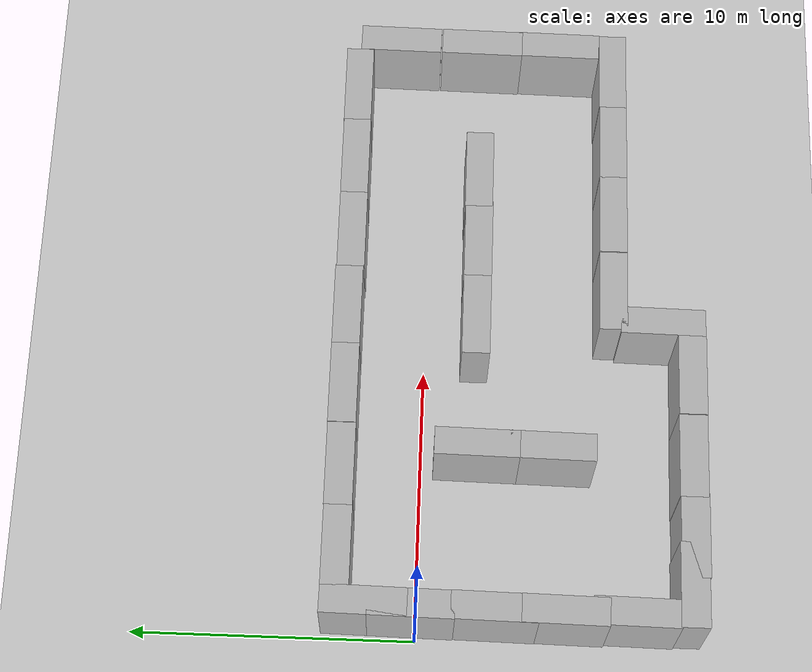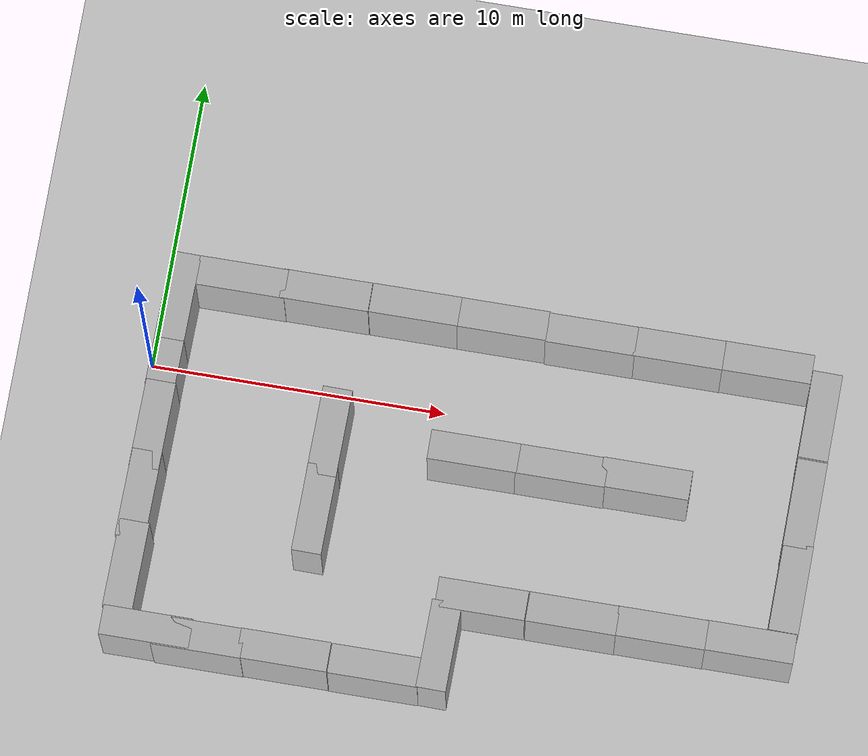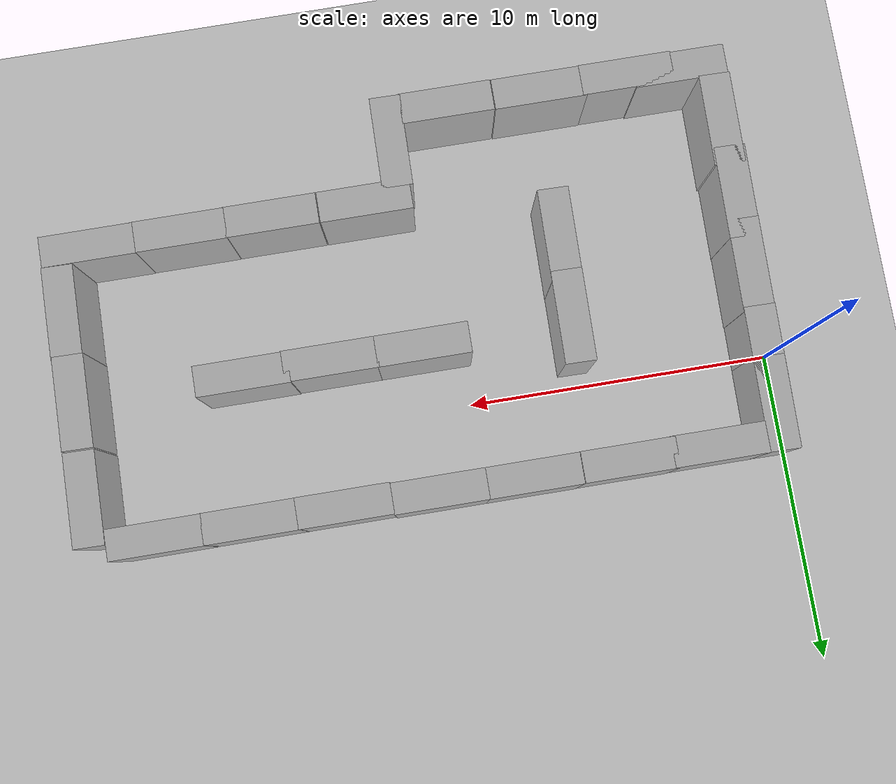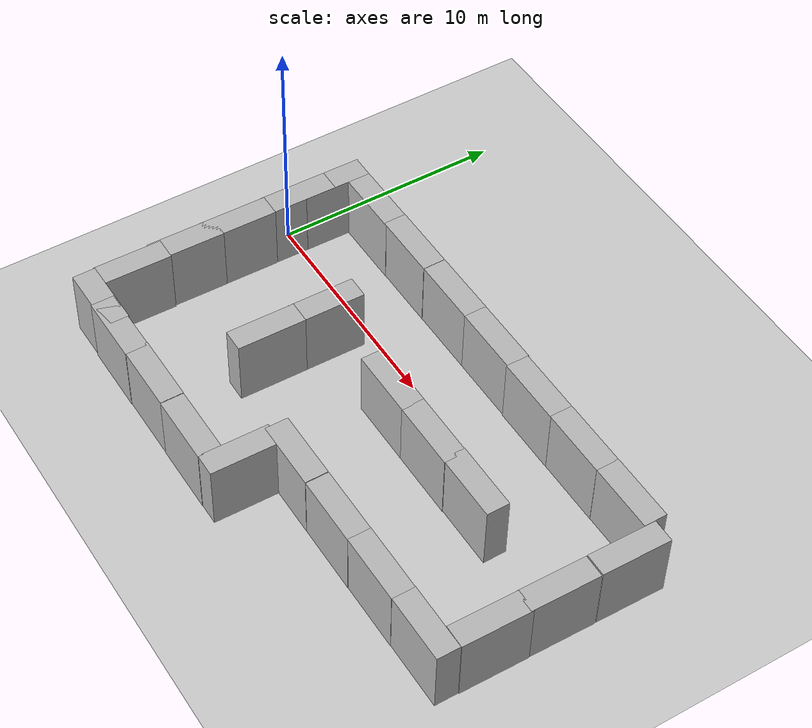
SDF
<sdf version="1.7">
 <world name="default">
  <light name="sun" type="directional">
   <pose>0 0 10 0 -0 0</pose>
   <diffuse>0.8 0.8 0.8 1</diffuse>
   <specular>0.2 0.2 0.2 1</specular>
   <attenuation>
    <range>1000</range>
    <constant>0.9</constant>
    <linear>0.01</linear>
    <quadratic>0.001</quadratic>
   </attenuation>
   <direction>-0.5 0.1 -0.9</direction>
   <spot><inner_angle>0</inner_angle><outer_angle>0</outer_angle><falloff>0</falloff></spot>
  </light>
  <model name="ground_plane">
   <static>1</static>
   <link name="link">
    <collision name="collision">
     <geometry><plane><normal>0 0 1</normal><size>100 100</size></plane></geometry>
     <surface>
      <contact><collide_bitmask>65535</collide_bitmask></contact>
      <friction><ode><mu>100</mu><mu2>50</mu2></ode></friction>
     </surface>
    </collision>
    <visual name="visual">
     <cast_shadows>0</cast_shadows>
     <geometry><plane><normal>0 0 1</normal><size>100 100</size></plane></geometry>
     <material>
      <script><uri>file://media/materials/scripts/gazebo.material</uri><name>Gazebo/Grey</name></script>
     </material>
    </visual>
   </link>
  </model>
  <gravity>0 0 -9.8</gravity>
  <magnetic_field>6e-06 2.3e-05 -4.2e-05</magnetic_field>
  <atmosphere type="adiabatic"/>
  <physics type="ode">
   <max_step_size>0.001</max_step_size>
   <real_time_factor>1</real_time_factor>
   <real_time_update_rate>1000</real_time_update_rate>
  </physics>
  <scene><ambient>0.4 0.4 0.4 1</ambient><background>0.7 0.7 0.7 1</background><shadows>1</shadows></scene>
  <spherical_coordinates>
   <surface_model>EARTH_WGS84</surface_model>
   <latitude_deg>0</latitude_deg>
   <longitude_deg>0</longitude_deg>
   <elevation>0</elevation>
   <heading_deg>0</heading_deg>
  </spherical_coordinates>
  <model name="brick_box_3x1x3">
   <static>1</static>
   <link name="chassis">
    <pose>0 0 1.5 0 -0 0</pose>
    <collision name="collision"><geometry><box><size>3 1 3</size></box></geometry></collision>
    <visual name="visual">
     <geometry><mesh><uri>model://brick_box_3x1x3/meshes/simple_box.dae</uri><scale>3 1 3</scale></mesh></geometry>
     <material>
      <script>
       <uri>model://brick_box_3x1x3/materials/scripts</uri>
       <uri>model://brick_box_3x1x3/materials/textures</uri>
       <name>BrickBox/Diffuse</name>
      </script>
     </material>
    </visual>
   </link>
   <pose>6.24661 -9.49277 0 0 -0 0</pose>
  </model>
  <model name="brick_box_3x1x3_0">
   <static>1</static>
   <link name="chassis">
    <pose>0 0 1.5 0 -0 0</pose>
    <collision name="collision"><geometry><box><size>3 1 3</size></box></geometry></collision>
    <visual name="visual">
     <geometry><mesh><uri>model://brick_box_3x1x3/meshes/simple_box.dae</uri><scale>3 1 3</scale></mesh></geometry>
     <material>
      <script>
       <uri>model://brick_box_3x1x3/materials/scripts</uri>
       <uri>model://brick_box_3x1x3/materials/textures</uri>
       <name>BrickBox/Diffuse</name>
      </script>
     </material>
    </visual>
   </link>
   <pose>9.26993 -9.50546 0 0 -0 0</pose>
  </model>
  <model name="brick_box_3x1x3_1">
   <static>1</static>
   <link name="chassis">
    <pose>0 0 1.5 0 -0 0</pose>
    <collision name="collision"><geometry><box><size>3 1 3</size></box></geometry></collision>
    <visual name="visual">
     <geometry><mesh><uri>model://brick_box_3x1x3/meshes/simple_box.dae</uri><scale>3 1 3</scale></mesh></geometry>
     <material>
      <script>
       <uri>model://brick_box_3x1x3/materials/scripts</uri>
       <uri>model://brick_box_3x1x3/materials/textures</uri>
       <name>BrickBox/Diffuse</name>
      </script>
     </material>
    </visual>
   </link>
   <pose>11.2396 -8.49514 0 0 0 -1.58618</pose>
  </model>
  <model name="brick_box_3x1x3_clone">
   <static>1</static>
   <link name="chassis">
    <pose>0 0 1.5 0 -0 0</pose>
    <collision name="collision"><geometry><box><size>3 1 3</size></box></geometry></collision>
    <visual name="visual">
     <geometry><mesh><uri>model://brick_box_3x1x3/meshes/simple_box.dae</uri><scale>3 1 3</scale></mesh></geometry>
     <material>
      <script>
       <uri>model://brick_box_3x1x3/materials/scripts</uri>
       <uri>model://brick_box_3x1x3/materials/textures</uri>
       <name>BrickBox/Diffuse</name>
      </script>
     </material>
    </visual>
   </link>
   <pose>3.37674 -9.50836 0 0 -0 0</pose>
  </model>
  <model name="brick_box_3x1x3_clone_4">
   <static>1</static>
   <link name="chassis">
    <pose>0 0 1.5 0 -0 0</pose>
    <collision name="collision"><geometry><box><size>3 1 3</size></box></geometry></collision>
    <visual name="visual">
     <geometry><mesh><uri>model://brick_box_3x1x3/meshes/simple_box.dae</uri><scale>3 1 3</scale></mesh></geometry>
     <material>
      <script>
       <uri>model://brick_box_3x1x3/materials/scripts</uri>
       <uri>model://brick_box_3x1x3/materials/textures</uri>
       <name>BrickBox/Diffuse</name>
      </script>
     </material>
    </visual>
   </link>
   <pose>1.64078 -9.46877 0 0 -0 0</pose>
  </model>
  <model name="brick_box_3x1x3_1_clone_1">
   <static>1</static>
   <link name="chassis">
    <pose>0 0 1.5 0 -0 0</pose>
    <collision name="collision"><geometry><box><size>3 1 3</size></box></geometry></collision>
    <visual name="visual">
     <geometry><mesh><uri>model://brick_box_3x1x3/meshes/simple_box.dae</uri><scale>3 1 3</scale></mesh></geometry>
     <material>
      <script>
       <uri>model://brick_box_3x1x3/materials/scripts</uri>
       <uri>model://brick_box_3x1x3/materials/textures</uri>
       <name>BrickBox/Diffuse</name>
      </script>
     </material>
    </visual>
   </link>
   <pose>0.627591 -2.68587 0 0 0 -1.58618</pose>
  </model>
  <model name="brick_box_3x1x3_1_clone_3">
   <static>1</static>
   <link name="chassis">
    <pose>0 0 1.5 0 -0 0</pose>
    <collision name="collision"><geometry><box><size>3 1 3</size></box></geometry></collision>
    <visual name="visual">
     <geometry><mesh><uri>model://brick_box_3x1x3/meshes/simple_box.dae</uri><scale>3 1 3</scale></mesh></geometry>
     <material>
      <script>
       <uri>model://brick_box_3x1x3/materials/scripts</uri>
       <uri>model://brick_box_3x1x3/materials/textures</uri>
       <name>BrickBox/Diffuse</name>
      </script>
     </material>
    </visual>
   </link>
   <pose>0.601737 -5.09369 0 0 0 -1.58618</pose>
  </model>
  <model name="brick_box_3x1x3_1_clone_11">
   <static>1</static>
   <link name="chassis">
    <pose>0 0 1.5 0 -0 0</pose>
    <collision name="collision"><geometry><box><size>3 1 3</size></box></geometry></collision>
    <visual name="visual">
     <geometry><mesh><uri>model://brick_box_3x1x3/meshes/simple_box.dae</uri><scale>3 1 3</scale></mesh></geometry>
     <material>
      <script>
       <uri>model://brick_box_3x1x3/materials/scripts</uri>
       <uri>model://brick_box_3x1x3/materials/textures</uri>
       <name>BrickBox/Diffuse</name>
      </script>
     </material>
    </visual>
   </link>
   <pose>22.4046 1.25072 0 0 0 -1.58618</pose>
  </model>
  <model name="brick_box_3x1x3_1_clone_12">
   <static>1</static>
   <link name="chassis">
    <pose>0 0 1.5 0 -0 0</pose>
    <collision name="collision"><geometry><box><size>3 1 3</size></box></geometry></collision>
    <visual name="visual">
     <geometry><mesh><uri>model://brick_box_3x1x3/meshes/simple_box.dae</uri><scale>3 1 3</scale></mesh></geometry>
     <material>
      <script>
       <uri>model://brick_box_3x1x3/materials/scripts</uri>
       <uri>model://brick_box_3x1x3/materials/textures</uri>
       <name>BrickBox/Diffuse</name>
      </script>
     </material>
    </visual>
   </link>
   <pose>22.368 -1.79572 0 0 0 -1.58618</pose>
  </model>
  <model name="brick_box_3x1x3_1_clone_13">
   <static>1</static>
   <link name="chassis">
    <pose>0 0 1.5 0 -0 0</pose>
    <collision name="collision"><geometry><box><size>3 1 3</size></box></geometry></collision>
    <visual name="visual">
     <geometry><mesh><uri>model://brick_box_3x1x3/meshes/simple_box.dae</uri><scale>3 1 3</scale></mesh></geometry>
     <material>
      <script>
       <uri>model://brick_box_3x1x3/materials/scripts</uri>
       <uri>model://brick_box_3x1x3/materials/textures</uri>
       <name>BrickBox/Diffuse</name>
      </script>
     </material>
    </visual>
   </link>
   <pose>22.3404 -4.68308 0 0 0 -1.58618</pose>
  </model>
  <model name="brick_box_3x1x3_0_clone_12">
   <static>1</static>
   <link name="chassis">
    <pose>0 0 1.5 0 -0 0</pose>
    <collision name="collision"><geometry><box><size>3 1 3</size></box></geometry></collision>
    <visual name="visual">
     <geometry><mesh><uri>model://brick_box_3x1x3/meshes/simple_box.dae</uri><scale>3 1 3</scale></mesh></geometry>
     <material>
      <script>
       <uri>model://brick_box_3x1x3/materials/scripts</uri>
       <uri>model://brick_box_3x1x3/materials/textures</uri>
       <name>BrickBox/Diffuse</name>
      </script>
     </material>
    </visual>
   </link>
   <pose>21.2878 -6.69388 0 0 -0 0</pose>
  </model>
  <model name="brick_box_3x1x3_0_clone_13">
   <static>1</static>
   <link name="chassis">
    <pose>0 0 1.5 0 -0 0</pose>
    <collision name="collision"><geometry><box><size>3 1 3</size></box></geometry></collision>
    <visual name="visual">
     <geometry><mesh><uri>model://brick_box_3x1x3/meshes/simple_box.dae</uri><scale>3 1 3</scale></mesh></geometry>
     <material>
      <script>
       <uri>model://brick_box_3x1x3/materials/scripts</uri>
       <uri>model://brick_box_3x1x3/materials/textures</uri>
       <name>BrickBox/Diffuse</name>
      </script>
     </material>
    </visual>
   </link>
   <pose>18.3578 -6.70605 0 0 -0 0</pose>
  </model>
  <model name="brick_box_3x1x3_0_clone_14">
   <static>1</static>
   <link name="chassis">
    <pose>0 0 1.5 0 -0 0</pose>
    <collision name="collision"><geometry><box><size>3 1 3</size></box></geometry></collision>
    <visual name="visual">
     <geometry><mesh><uri>model://brick_box_3x1x3/meshes/simple_box.dae</uri><scale>3 1 3</scale></mesh></geometry>
     <material>
      <script>
       <uri>model://brick_box_3x1x3/materials/scripts</uri>
       <uri>model://brick_box_3x1x3/materials/textures</uri>
       <name>BrickBox/Diffuse</name>
      </script>
     </material>
    </visual>
   </link>
   <pose>15.3956 -6.71422 0 0 -0 0</pose>
  </model>
  <model name="brick_box_3x1x3_0_clone_15">
   <static>1</static>
   <link name="chassis">
    <pose>0 0 1.5 0 -0 0</pose>
    <collision name="collision"><geometry><box><size>3 1 3</size></box></geometry></collision>
    <visual name="visual">
     <geometry><mesh><uri>model://brick_box_3x1x3/meshes/simple_box.dae</uri><scale>3 1 3</scale></mesh></geometry>
     <material>
      <script>
       <uri>model://brick_box_3x1x3/materials/scripts</uri>
       <uri>model://brick_box_3x1x3/materials/textures</uri>
       <name>BrickBox/Diffuse</name>
      </script>
     </material>
    </visual>
   </link>
   <pose>12.3678 -6.71439 0 0 -0 0</pose>
  </model>
  <model name="brick_box_3x1x3_0_clone_13_clone">
   <static>1</static>
   <link name="chassis">
    <pose>0 0 1.5 0 -0 0</pose>
    <collision name="collision"><geometry><box><size>3 1 3</size></box></geometry></collision>
    <visual name="visual">
     <geometry><mesh><uri>model://brick_box_3x1x3/meshes/simple_box.dae</uri><scale>3 1 3</scale></mesh></geometry>
     <material>
      <script>
       <uri>model://brick_box_3x1x3/materials/scripts</uri>
       <uri>model://brick_box_3x1x3/materials/textures</uri>
       <name>BrickBox/Diffuse</name>
      </script>
     </material>
    </visual>
   </link>
   <pose>20.4139 2.7789 0 0 -0 0</pose>
  </model>
  <model name="brick_box_3x1x3_0_clone_13_clone_0">
   <static>1</static>
   <link name="chassis">
    <pose>0 0 1.5 0 -0 0</pose>
    <collision name="collision"><geometry><box><size>3 1 3</size></box></geometry></collision>
    <visual name="visual">
     <geometry><mesh><uri>model://brick_box_3x1x3/meshes/simple_box.dae</uri><scale>3 1 3</scale></mesh></geometry>
     <material>
      <script>
       <uri>model://brick_box_3x1x3/materials/scripts</uri>
       <uri>model://brick_box_3x1x3/materials/textures</uri>
       <name>BrickBox/Diffuse</name>
      </script>
     </material>
    </visual>
   </link>
   <pose>17.438 2.7716 0 0 -0 0</pose>
  </model>
  <model name="brick_box_3x1x3_0_clone_13_clone_1">
   <static>1</static>
   <link name="chassis">
    <pose>0 0 1.5 0 -0 0</pose>
    <collision name="collision"><geometry><box><size>3 1 3</size></box></geometry></collision>
    <visual name="visual">
     <geometry><mesh><uri>model://brick_box_3x1x3/meshes/simple_box.dae</uri><scale>3 1 3</scale></mesh></geometry>
     <material>
      <script>
       <uri>model://brick_box_3x1x3/materials/scripts</uri>
       <uri>model://brick_box_3x1x3/materials/textures</uri>
       <name>BrickBox/Diffuse</name>
      </script>
     </material>
    </visual>
   </link>
   <pose>14.491 2.76728 0 0 -0 0</pose>
  </model>
  <model name="brick_box_3x1x3_0_clone_13_clone_2">
   <static>1</static>
   <link name="chassis">
    <pose>0 0 1.5 0 -0 0</pose>
    <collision name="collision"><geometry><box><size>3 1 3</size></box></geometry></collision>
    <visual name="visual">
     <geometry><mesh><uri>model://brick_box_3x1x3/meshes/simple_box.dae</uri><scale>3 1 3</scale></mesh></geometry>
     <material>
      <script>
       <uri>model://brick_box_3x1x3/materials/scripts</uri>
       <uri>model://brick_box_3x1x3/materials/textures</uri>
       <name>BrickBox/Diffuse</name>
      </script>
     </material>
    </visual>
   </link>
   <pose>11.5022 2.80166 0 0 -0 0</pose>
  </model>
  <model name="brick_box_3x1x3_0_clone_13_clone_3">
   <static>1</static>
   <link name="chassis">
    <pose>0 0 1.5 0 -0 0</pose>
    <collision name="collision"><geometry><box><size>3 1 3</size></box></geometry></collision>
    <visual name="visual">
     <geometry><mesh><uri>model://brick_box_3x1x3/meshes/simple_box.dae</uri><scale>3 1 3</scale></mesh></geometry>
     <material>
      <script>
       <uri>model://brick_box_3x1x3/materials/scripts</uri>
       <uri>model://brick_box_3x1x3/materials/textures</uri>
       <name>BrickBox/Diffuse</name>
      </script>
     </material>
    </visual>
   </link>
   <pose>8.52566 2.80451 0 0 -0 0</pose>
  </model>
  <model name="brick_box_3x1x3_0_clone_13_clone_4">
   <static>1</static>
   <link name="chassis">
    <pose>0 0 1.5 0 -0 0</pose>
    <collision name="collision"><geometry><box><size>3 1 3</size></box></geometry></collision>
    <visual name="visual">
     <geometry><mesh><uri>model://brick_box_3x1x3/meshes/simple_box.dae</uri><scale>3 1 3</scale></mesh></geometry>
     <material>
      <script>
       <uri>model://brick_box_3x1x3/materials/scripts</uri>
       <uri>model://brick_box_3x1x3/materials/textures</uri>
       <name>BrickBox/Diffuse</name>
      </script>
     </material>
    </visual>
   </link>
   <pose>5.51232 2.79764 0 0 -0 0</pose>
  </model>
  <model name="brick_box_3x1x3_0_clone_13_clone_5">
   <static>1</static>
   <link name="chassis">
    <pose>0 0 1.5 0 -0 0</pose>
    <collision name="collision"><geometry><box><size>3 1 3</size></box></geometry></collision>
    <visual name="visual">
     <geometry><mesh><uri>model://brick_box_3x1x3/meshes/simple_box.dae</uri><scale>3 1 3</scale></mesh></geometry>
     <material>
      <script>
       <uri>model://brick_box_3x1x3/materials/scripts</uri>
       <uri>model://brick_box_3x1x3/materials/textures</uri>
       <name>BrickBox/Diffuse</name>
      </script>
     </material>
    </visual>
   </link>
   <pose>2.66988 2.78556 0 0 -0 0</pose>
  </model>
  <model name="brick_box_3x1x3_1_clone_14">
   <static>1</static>
   <link name="chassis">
    <pose>0 0 1.5 0 -0 0</pose>
    <collision name="collision"><geometry><box><size>3 1 3</size></box></geometry></collision>
    <visual name="visual">
     <geometry><mesh><uri>model://brick_box_3x1x3/meshes/simple_box.dae</uri><scale>3 1 3</scale></mesh></geometry>
     <material>
      <script>
       <uri>model://brick_box_3x1x3/materials/scripts</uri>
       <uri>model://brick_box_3x1x3/materials/textures</uri>
       <name>BrickBox/Diffuse</name>
      </script>
     </material>
    </visual>
   </link>
   <pose>0.680915 1.78742 0 0 0 -1.58618</pose>
  </model>
  <model name="brick_box_3x1x3_1_clone_15">
   <static>1</static>
   <link name="chassis">
    <pose>0 0 1.5 0 -0 0</pose>
    <collision name="collision"><geometry><box><size>3 1 3</size></box></geometry></collision>
    <visual name="visual">
     <geometry><mesh><uri>model://brick_box_3x1x3/meshes/simple_box.dae</uri><scale>3 1 3</scale></mesh></geometry>
     <material>
      <script>
       <uri>model://brick_box_3x1x3/materials/scripts</uri>
       <uri>model://brick_box_3x1x3/materials/textures</uri>
       <name>BrickBox/Diffuse</name>
      </script>
     </material>
    </visual>
   </link>
   <pose>0.654661 0.161896 0 0 0 -1.58618</pose>
  </model>
  <model name="brick_box_3x1x3_1_clone_16">
   <static>1</static>
   <link name="chassis">
    <pose>0 0 1.5 0 -0 0</pose>
    <collision name="collision"><geometry><box><size>3 1 3</size></box></geometry></collision>
    <visual name="visual">
     <geometry><mesh><uri>model://brick_box_3x1x3/meshes/simple_box.dae</uri><scale>3 1 3</scale></mesh></geometry>
     <material>
      <script>
       <uri>model://brick_box_3x1x3/materials/scripts</uri>
       <uri>model://brick_box_3x1x3/materials/textures</uri>
       <name>BrickBox/Diffuse</name>
      </script>
     </material>
    </visual>
   </link>
   <pose>0.620295 -7.52358 0 0 0 -1.58618</pose>
  </model>
  <model name="brick_box_3x1x3_clone_1_clone_0">
   <static>1</static>
   <link name="chassis">
    <pose>0 0 1.5 0 -0 0</pose>
    <collision name="collision"><geometry><box><size>3 1 3</size></box></geometry></collision>
    <visual name="visual">
     <geometry><mesh><uri>model://brick_box_3x1x3/meshes/simple_box.dae</uri><scale>3 1 3</scale></mesh></geometry>
     <material>
      <script>
       <uri>model://brick_box_3x1x3/materials/scripts</uri>
       <uri>model://brick_box_3x1x3/materials/textures</uri>
       <name>BrickBox/Diffuse</name>
      </script>
     </material>
    </visual>
   </link>
   <pose>14.2366 -1.83126 0 0 -0 0</pose>
  </model>
  <model name="brick_box_3x1x3_1_clone_16_clone_7">
   <static>1</static>
   <link name="chassis">
    <pose>0 0 1.5 0 -0 0</pose>
    <collision name="collision"><geometry><box><size>3 1 3</size></box></geometry></collision>
    <visual name="visual">
     <geometry><mesh><uri>model://brick_box_3x1x3/meshes/simple_box.dae</uri><scale>3 1 3</scale></mesh></geometry>
     <material>
      <script>
       <uri>model://brick_box_3x1x3/materials/scripts</uri>
       <uri>model://brick_box_3x1x3/materials/textures</uri>
       <name>BrickBox/Diffuse</name>
      </script>
     </material>
    </visual>
   </link>
   <pose>6.45542 -1.95951 0 0 0 -1.58618</pose>
  </model>
  <model name="brick_box_3x1x3_1_clone_16_clone_clone_4">
   <static>1</static>
   <link name="chassis">
    <pose>0 0 1.5 0 -0 0</pose>
    <collision name="collision"><geometry><box><size>3 1 3</size></box></geometry></collision>
    <visual name="visual">
     <geometry><mesh><uri>model://brick_box_3x1x3/meshes/simple_box.dae</uri><scale>3 1 3</scale></mesh></geometry>
     <material>
      <script>
       <uri>model://brick_box_3x1x3/materials/scripts</uri>
       <uri>model://brick_box_3x1x3/materials/textures</uri>
       <name>BrickBox/Diffuse</name>
      </script>
     </material>
    </visual>
   </link>
   <pose>6.41994 -4.62922 0 0 0 -1.58618</pose>
  </model>
  <model name="brick_box_3x1x3_clone_1_clone_0_clone">
   <static>1</static>
   <link name="chassis">
    <pose>0 0 1.5 0 -0 0</pose>
    <collision name="collision"><geometry><box><size>3 1 3</size></box></geometry></collision>
    <visual name="visual">
     <geometry><mesh><uri>model://brick_box_3x1x3/meshes/simple_box.dae</uri><scale>3 1 3</scale></mesh></geometry>
     <material>
      <script>
       <uri>model://brick_box_3x1x3/materials/scripts</uri>
       <uri>model://brick_box_3x1x3/materials/textures</uri>
       <name>BrickBox/Diffuse</name>
      </script>
     </material>
    </visual>
   </link>
   <pose>11.285 -1.82965 0 0 -0 0</pose>
  </model>
  <model name="brick_box_3x1x3_clone_1_clone_0_clone_0">
   <static>1</static>
   <link name="chassis">
    <pose>0 0 1.5 0 -0 0</pose>
    <collision name="collision"><geometry><box><size>3 1 3</size></box></geometry></collision>
    <visual name="visual">
     <geometry><mesh><uri>model://brick_box_3x1x3/meshes/simple_box.dae</uri><scale>3 1 3</scale></mesh></geometry>
     <material>
      <script>
       <uri>model://brick_box_3x1x3/materials/scripts</uri>
       <uri>model://brick_box_3x1x3/materials/textures</uri>
       <name>BrickBox/Diffuse</name>
      </script>
     </material>
    </visual>
   </link>
   <pose>17.0443 -1.80809 0 0 -0 0</pose>
  </model>
 </world>
</sdf>
